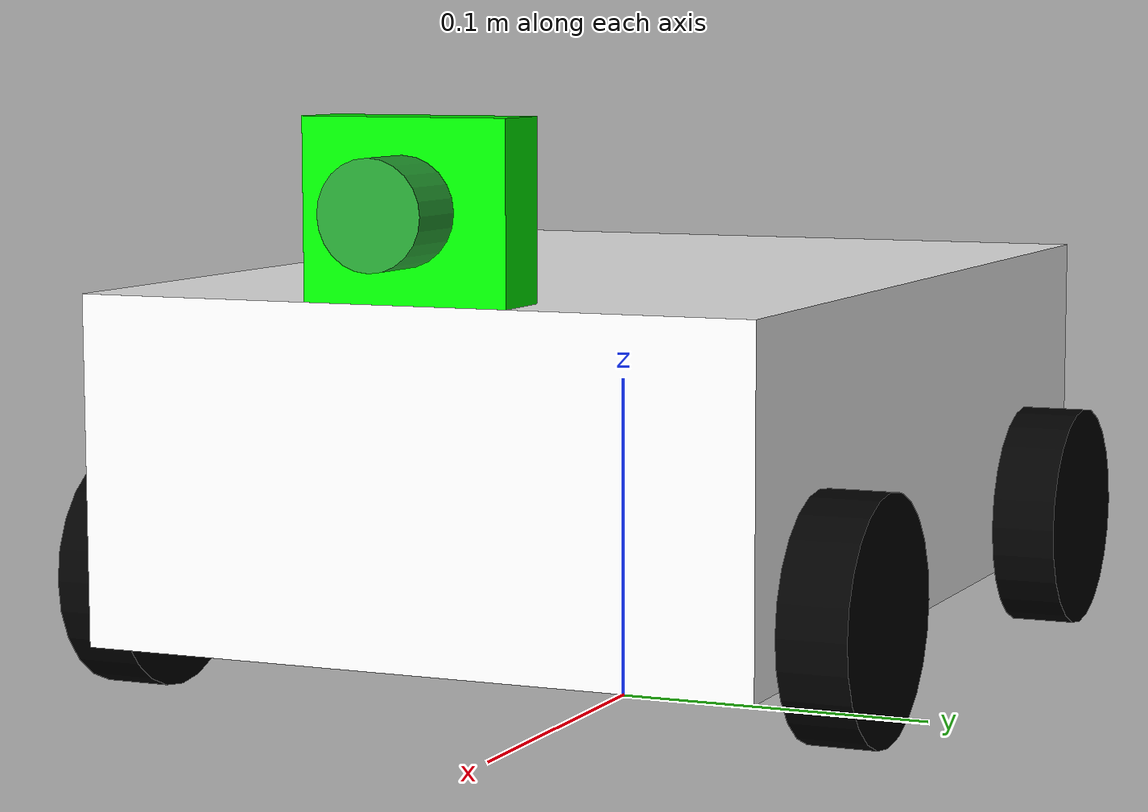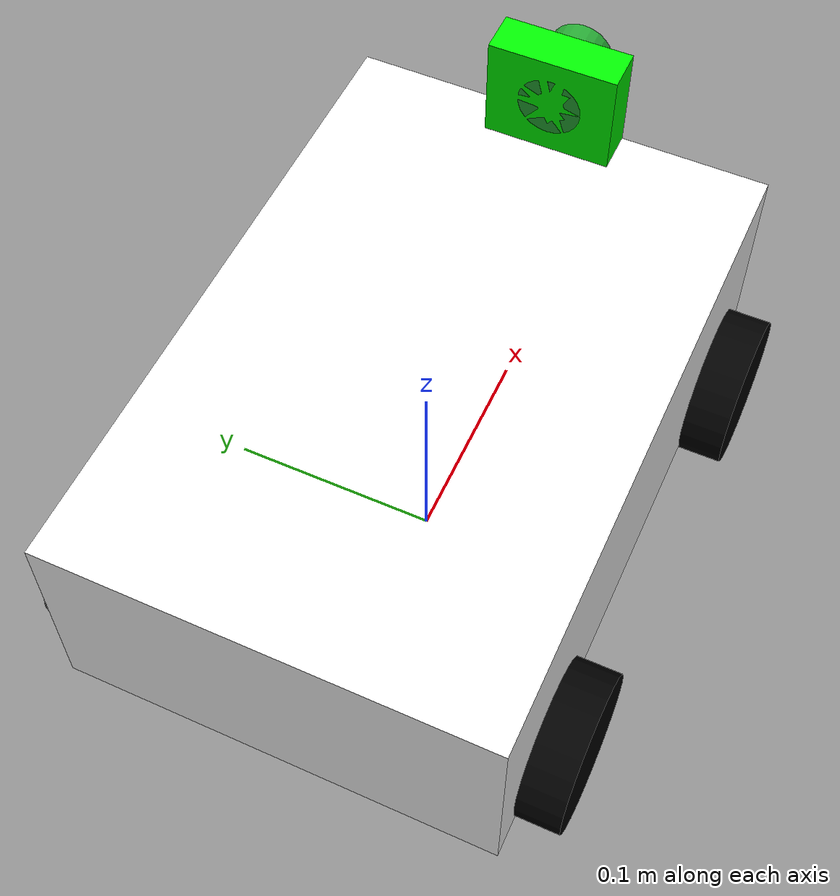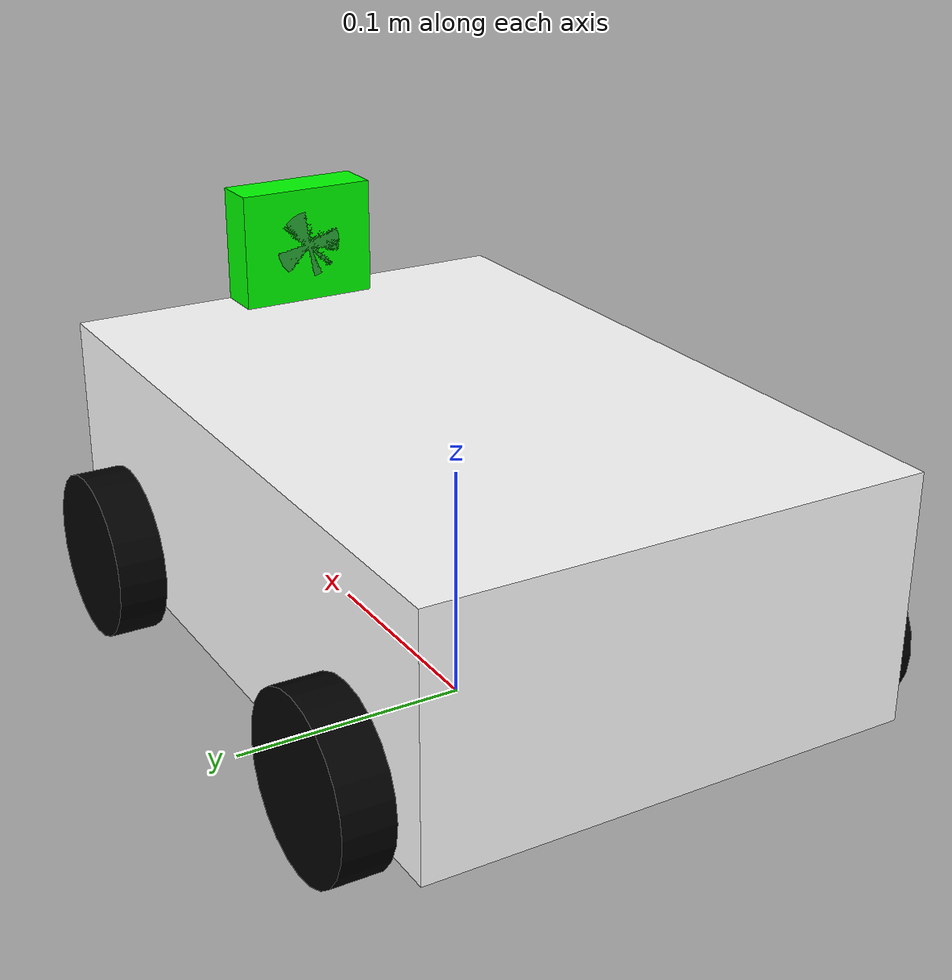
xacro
<?xml version="1.0"?>
<robot xmlns:xacro="http://www.ros.org/wiki/xacro"  name="robot_car">

    <xacro:arg name="use_ros2_control" default="true" />

    <xacro:include filename="car.xacro" />

    <!-- if else statement for controller types -->
    <xacro:if value="$(arg use_ros2_control)">
        <xacro:include filename="ros2_control.xacro"/>
    </xacro:if>
    <xacro:unless value="$(arg use_ros2_control)">
        <xacro:include filename="gazebo_control.xacro" />
    </xacro:unless>

    <xacro:include filename="camera.xacro"/>

</robot>

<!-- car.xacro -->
<robot xmlns:xacro="http://www.ros.org/wiki/xacro">

    <xacro:property name="wheel_radius" value="0.035" />
    <xacro:property name="wheel_length" value="0.02" />
    <xacro:property name="chassis_width" value="0.2" />
    <xacro:property name="chassis_length" value="0.3" />
    <xacro:property name="chassis_height" value="0.1" />

    <material name="black">
        <color rgba="0 0 0 1"/>
    </material>

    <material name="white">
        <color rgba="1 1 1 1"/>
    </material>

    <link name="base_link">

    </link>

    <link name="chassis">
        <visual>
            <geometry>
            <box size="${chassis_length} ${chassis_width} ${chassis_height}"/>
            </geometry>
            <material name="white"/>
        </visual>
        <collision>
            <geometry>
                <box size="${chassis_length} ${chassis_width} ${chassis_height}"/>
            </geometry>
        </collision>
        <inertial>
            <mass value="2"/>
            <inertia ixx="1.75e-2" iyy="4.17e-3" izz="1.08e-2" ixy="0" ixz="0" iyz="0"/>
        </inertial>
    </link>

    <gazebo reference="chassis">
        <material>Gazebo/White</material>
    </gazebo>

    <joint name="chassis_joint" type="fixed">
        <origin xyz="0 0 ${wheel_radius+chassis_height/2}" />
        <parent link="base_link"/>
        <child link="chassis"/>
    </joint>

    <link name="left_front_wheel">
        <visual>
            <geometry>
            <cylinder length="${wheel_length}" radius="${wheel_radius}"/>
            </geometry>
            <material name="black"/>
        </visual>
        <collision>
            <geometry>
                <cylinder length="${wheel_length}" radius="${wheel_radius}"/>
            </geometry>
        </collision>
        <inertial>
            <mass value="0.1"/>
            <inertia ixx="2.53e-4" iyy="2.53e-4" izz="5e-4" ixy="0" ixz="0" iyz="0"/>
        </inertial>
    </link>

    <gazebo reference="left_front_wheel">
        <material>Gazebo/Black</material>
    </gazebo>

    <joint name="left_front_wheel_joint" type="continuous">
        <axis xyz="0 0 1"/>
        <parent link="chassis"/>
        <child link="left_front_wheel"/>
        <origin rpy="${-pi/2} 0 0" xyz="0.1 ${(chassis_width+wheel_length)/2} ${-wheel_radius}"/> <!-- ${(chassis_width+wheel_length)/2} -->
    </joint>

    <link name="right_front_wheel">
        <visual>
            <geometry>
                <cylinder length="${wheel_length}" radius="${wheel_radius}"/>
            </geometry>
            <material name="black"/>
        </visual>
        <collision>
            <geometry>
                <cylinder length="${wheel_length}" radius="${wheel_radius}"/>
            </geometry>
        </collision>
        <inertial>
            <mass value="0.1"/>
            <inertia ixx="2.53e-4" iyy="2.53e-4" izz="5e-4" ixy="0" ixz="0" iyz="0"/>
        </inertial>
    </link>

    <gazebo reference="right_front_wheel">
        <material>Gazebo/Black</material>
    </gazebo>

    <joint name="right_front_wheel_joint" type="continuous">
        <axis rpy="0 0 0" xyz="0 0 1"/>
        <parent link="chassis"/>
        <child link="right_front_wheel"/>
        <origin rpy="${-pi/2} 0 0" xyz="0.1 -${(chassis_width+wheel_length)/2} ${-wheel_radius}"/> <!-- ${-(chassis_width+wheel_length)/2} -->
    </joint>

    <link name="left_back_wheel">
        <visual>
            <geometry>
                <cylinder length="${wheel_length}" radius="${wheel_radius}"/>
            </geometry>
            <material name="black"/>
        </visual>
        <collision>
            <geometry>
                <cylinder length="${wheel_length}" radius="${wheel_radius}"/>
            </geometry>
        </collision>
        <inertial>
            <mass value="0.1"/>
            <inertia ixx="2.53e-4" iyy="2.53e-4" izz="5e-4" ixy="0" ixz="0" iyz="0"/>
        </inertial>
    </link>

    <gazebo reference="left_back_wheel">
        <material>Gazebo/Black</material>
        <mu1 value="0.0001"/>
        <mu2 value="0.0001"/>
    </gazebo>

    <joint name="left_back_wheel_joint" type="fixed">
        <parent link="chassis"/>
        <child link="left_back_wheel"/>
        <origin rpy="${-pi/2} 0 0" xyz="-0.1 ${(chassis_width+wheel_length)/2} ${-wheel_radius}"/> <!-- ${(chassis_width+wheel_length)/2} -->
    </joint>

    <link name="right_back_wheel">
        <visual>
            <geometry>
                <cylinder length="${wheel_length}" radius="${wheel_radius}"/>
            </geometry>
            <material name="black"/>
        </visual>
        <collision>
            <geometry>
                <cylinder length="${wheel_length}" radius="${wheel_radius}"/>
            </geometry>
        </collision>
        <inertial>
            <mass value="0.1"/>
            <inertia ixx="2.53e-4" iyy="2.53e-4" izz="5e-4" ixy="0" ixz="0" iyz="0"/>
        </inertial>
    </link>

    <gazebo reference="right_back_wheel">
        <material>Gazebo/Black</material>
        <mu1 value="0.0001"/>
        <mu2 value="0.0001"/>
    </gazebo>

    <joint name="right_back_wheel_joint" type="fixed">
        <parent link="chassis"/>
        <child link="right_back_wheel"/>
        <origin rpy="${-pi/2} 0 0" xyz="-0.1 ${-(chassis_width+wheel_length)/2} ${-wheel_radius}"/> <!-- ${-(chassis_width+wheel_length)/2} -->
    </joint>

</robot>

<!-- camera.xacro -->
<robot xmlns:xacro="http://www.ros.org/wiki/xacro">

    <xacro:property name="cam_thickness" value="0.02" />
    <xacro:property name="cam_width" value="0.06"/>
    <xacro:property name="cam_height" value="0.05"/>
    <xacro:property name="lens_radius" value="0.015"/>
    <xacro:property name="lens_length" value="0.04"/>

    <material name="green">
        <color rgba="0 1 0 1"/>
    </material>

    <joint name="camera_joint" type="fixed">
        <parent link="chassis"/>
        <child link="camera"/>
        <origin xyz="${(chassis_length-cam_thickness)/2} 0 ${(chassis_height+cam_height)/2}" rpy="0 0 0"/>
    </joint>

    <link name="camera">
        <visual>
            <geometry>
                <box size="${cam_thickness} ${cam_width} ${cam_height}"/>
            </geometry>
            <material name="green"/>
        </visual>
        <visual>
            <origin xyz="${cam_thickness/2} 0 0" rpy="0  ${-pi/2} 0"/>
            <geometry>
                <cylinder radius="${lens_radius}" length="${lens_length}"/>
            </geometry>
        </visual>
    </link>

    <joint name="camera_optical_joint" type="fixed">
        <parent link="camera"/>
        <child link="camera_optical"/>
        <origin xyz="0 0 0" rpy="${-pi/2} 0 ${-pi/2}"/>
    </joint>

    <link name="camera_optical"></link>

    <gazebo reference="camera">
        <material>Gazebo/Green</material>

        <sensor name="camera" type="camera">
            <pose> 0 0 0 0 0 0 </pose>
            <visualize>true</visualize>
            <update_rate>10</update_rate>
            <camera>
                <horizontal_fov>1.089</horizontal_fov> <!-- in radians -->
                <image>
                    <format>R8G8B8</format>
                    <width>640</width>
                    <height>480</height>
                </image>
                <clip> <!-- range camera can see -->
                    <near>0.05</near>
                    <far>8.0</far>
                </clip>
            </camera>
            <plugin name="camera_controller" filename="libgazebo_ros_camera.so">
                <frame_name>camera_optical</frame_name> <!-- due to different standards in ros and gazebo -->
            </plugin>
        </sensor>
    </gazebo>
</robot>
